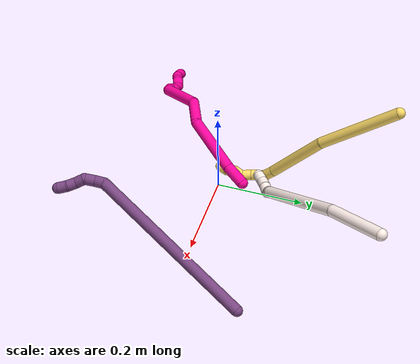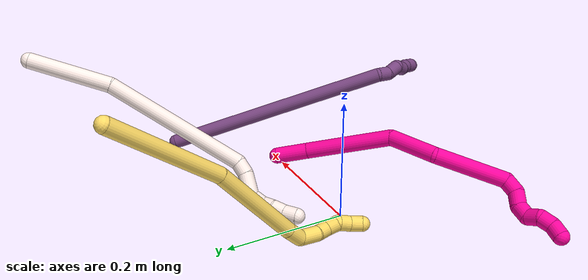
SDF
<sdf version="1.7">
 <world name="default">
  <model name="5">
   <static>0</static>
   <link name="5">
    <collision name="collision-cylinder-e_1_1_4">
     <pose>-0.004229 -0.018593 -0.096051 2.95038 -0.043198 -0.443142</pose>
     <geometry><cylinder><radius>0.0125</radius><length>0.19585</length></cylinder></geometry>
     <surface>
      <friction><ode><mu>1.16</mu><mu2>1.16</mu2><slip1>0</slip1><slip2>0</slip2></ode></friction>
      <contact><ode><kp>1e+06</kp><kd>1</kd><max_vel>0</max_vel><min_depth>0.001</min_depth></ode></contact>
     </surface>
    </collision>
    <visual name="visual-cylinder-e_1_1_4">
     <pose>-0.004229 -0.018593 -0.096051 2.95038 -0.043198 -0.443142</pose>
     <geometry><cylinder><radius>0.0125</radius><length>0.19585</length></cylinder></geometry>
     <material><ambient>1 0.858824 0.4 1</ambient></material>
    </visual>
    <collision name="collision-cylinder-e_2_4_5">
     <pose>-0.023841 -0.039337 -0.270599 3.1142 -0.193443 -2.8611</pose>
     <geometry><cylinder><radius>0.0125</radius><length>0.160038</length></cylinder></geometry>
     <surface>
      <friction><ode><mu>1.16</mu><mu2>1.16</mu2><slip1>0</slip1><slip2>0</slip2></ode></friction>
      <contact><ode><kp>1e+06</kp><kd>1</kd><max_vel>0</max_vel><min_depth>0.001</min_depth></ode></contact>
     </surface>
    </collision>
    <visual name="visual-cylinder-e_2_4_5">
     <pose>-0.023841 -0.039337 -0.270599 3.1142 -0.193443 -2.8611</pose>
     <geometry><cylinder><radius>0.0125</radius><length>0.160038</length></cylinder></geometry>
     <material><ambient>1 0.858824 0.4 1</ambient></material>
    </visual>
    <collision name="collision-cylinder-e_3_5_6">
     <pose>-0.041138 -0.042651 -0.363485 3.06088 -0.131821 -2.04355</pose>
     <geometry><cylinder><radius>0.0125</radius><length>0.029126</length></cylinder></geometry>
     <surface>
      <friction><ode><mu>1.16</mu><mu2>1.16</mu2><slip1>0</slip1><slip2>0</slip2></ode></friction>
      <contact><ode><kp>1e+06</kp><kd>1</kd><max_vel>0</max_vel><min_depth>0.001</min_depth></ode></contact>
     </surface>
    </collision>
    <visual name="visual-cylinder-e_3_5_6">
     <pose>-0.041138 -0.042651 -0.363485 3.06088 -0.131821 -2.04355</pose>
     <geometry><cylinder><radius>0.0125</radius><length>0.029126</length></cylinder></geometry>
     <material><ambient>1 0.858824 0.4 1</ambient></material>
    </visual>
    <collision name="collision-cylinder-e_4_6_7">
     <pose>-0.039413 -0.053308 -0.390351 2.4912 0.228067 0.65491</pose>
     <geometry><cylinder><radius>0.0125</radius><length>0.032187</length></cylinder></geometry>
     <surface>
      <friction><ode><mu>1.16</mu><mu2>1.16</mu2><slip1>0</slip1><slip2>0</slip2></ode></friction>
      <contact><ode><kp>1e+06</kp><kd>1</kd><max_vel>0</max_vel><min_depth>0.001</min_depth></ode></contact>
     </surface>
    </collision>
    <visual name="visual-cylinder-e_4_6_7">
     <pose>-0.039413 -0.053308 -0.390351 2.4912 0.228067 0.65491</pose>
     <geometry><cylinder><radius>0.0125</radius><length>0.032187</length></cylinder></geometry>
     <material><ambient>1 0.858824 0.4 1</ambient></material>
    </visual>
    <collision name="collision-cylinder-e_5_7_8">
     <pose>-0.030714 -0.068334 -0.411246 2.56007 0.465432 1.33973</pose>
     <geometry><cylinder><radius>0.0125</radius><length>0.022548</length></cylinder></geometry>
     <surface>
      <friction><ode><mu>1.16</mu><mu2>1.16</mu2><slip1>0</slip1><slip2>0</slip2></ode></friction>
      <contact><ode><kp>1e+06</kp><kd>1</kd><max_vel>0</max_vel><min_depth>0.001</min_depth></ode></contact>
     </surface>
    </collision>
    <visual name="visual-cylinder-e_5_7_8">
     <pose>-0.030714 -0.068334 -0.411246 2.56007 0.465432 1.33973</pose>
     <geometry><cylinder><radius>0.0125</radius><length>0.022548</length></cylinder></geometry>
     <material><ambient>1 0.858824 0.4 1</ambient></material>
    </visual>
    <collision name="collision-cylinder-e_6_8_9">
     <pose>-0.024362 -0.083262 -0.423206 1.93126 0.12807 0.184865</pose>
     <geometry><cylinder><radius>0.0125</radius><length>0.020243</length></cylinder></geometry>
     <surface>
      <friction><ode><mu>1.16</mu><mu2>1.16</mu2><slip1>0</slip1><slip2>0</slip2></ode></friction>
      <contact><ode><kp>1e+06</kp><kd>1</kd><max_vel>0</max_vel><min_depth>0.001</min_depth></ode></contact>
     </surface>
    </collision>
    <visual name="visual-cylinder-e_6_8_9">
     <pose>-0.024362 -0.083262 -0.423206 1.93126 0.12807 0.184865</pose>
     <geometry><cylinder><radius>0.0125</radius><length>0.020243</length></cylinder></geometry>
     <material><ambient>1 0.858824 0.4 1</ambient></material>
    </visual>
    <collision name="collision-cylinder-e_7_9_10">
     <pose>-0.023694 -0.098228 -0.435027 2.5492 -0.062524 -0.204233</pose>
     <geometry><cylinder><radius>0.0125</radius><length>0.020001</length></cylinder></geometry>
     <surface>
      <friction><ode><mu>1.16</mu><mu2>1.16</mu2><slip1>0</slip1><slip2>0</slip2></ode></friction>
      <contact><ode><kp>1e+06</kp><kd>1</kd><max_vel>0</max_vel><min_depth>0.001</min_depth></ode></contact>
     </surface>
    </collision>
    <visual name="visual-cylinder-e_7_9_10">
     <pose>-0.023694 -0.098228 -0.435027 2.5492 -0.062524 -0.204233</pose>
     <geometry><cylinder><radius>0.0125</radius><length>0.020001</length></cylinder></geometry>
     <material><ambient>1 0.858824 0.4 1</ambient></material>
    </visual>
    <collision name="collision-cylinder-e_8_10_2">
     <pose>-0.026797 -0.111596 -0.449066 2.20709 -0.250329 -0.488813</pose>
     <geometry><cylinder><radius>0.0125</radius><length>0.020006</length></cylinder></geometry>
     <surface>
      <friction><ode><mu>1.16</mu><mu2>1.16</mu2><slip1>0</slip1><slip2>0</slip2></ode></friction>
      <contact><ode><kp>1e+06</kp><kd>1</kd><max_vel>0</max_vel><min_depth>0.001</min_depth></ode></contact>
     </surface>
    </collision>
    <visual name="visual-cylinder-e_8_10_2">
     <pose>-0.026797 -0.111596 -0.449066 2.20709 -0.250329 -0.488813</pose>
     <geometry><cylinder><radius>0.0125</radius><length>0.020006</length></cylinder></geometry>
     <material><ambient>1 0.858824 0.4 1</ambient></material>
    </visual>
    <collision name="collision-sphere-2">
     <pose>-0.029275 -0.119391 -0.454824 0 -0 0</pose>
     <geometry><sphere><radius>0.0125</radius></sphere></geometry>
     <surface>
      <friction><ode><mu>1.16</mu><mu2>1.16</mu2><slip1>0</slip1><slip2>0</slip2></ode></friction>
      <contact><ode><kp>1e+06</kp><kd>1</kd><max_vel>0</max_vel><min_depth>0.001</min_depth></ode></contact>
     </surface>
    </collision>
    <visual name="visual-sphere-2">
     <pose>-0.029275 -0.119391 -0.454824 0 -0 0</pose>
     <geometry><sphere><radius>0.0125</radius></sphere></geometry>
     <material><ambient>1 0.858824 0.4 1</ambient></material>
    </visual>
    <collision name="collision-sphere-10">
     <pose>-0.024319 -0.103801 -0.443307 0 -0 0</pose>
     <geometry><sphere><radius>0.0125</radius></sphere></geometry>
     <surface>
      <friction><ode><mu>1.16</mu><mu2>1.16</mu2><slip1>0</slip1><slip2>0</slip2></ode></friction>
      <contact><ode><kp>1e+06</kp><kd>1</kd><max_vel>0</max_vel><min_depth>0.001</min_depth></ode></contact>
     </surface>
    </collision>
    <visual name="visual-sphere-10">
     <pose>-0.024319 -0.103801 -0.443307 0 -0 0</pose>
     <geometry><sphere><radius>0.0125</radius></sphere></geometry>
     <material><ambient>1 0.858824 0.4 1</ambient></material>
    </visual>
    <collision name="collision-sphere-9">
     <pose>-0.023069 -0.092656 -0.426747 0 -0 0</pose>
     <geometry><sphere><radius>0.0125</radius></sphere></geometry>
     <surface>
      <friction><ode><mu>1.16</mu><mu2>1.16</mu2><slip1>0</slip1><slip2>0</slip2></ode></friction>
      <contact><ode><kp>1e+06</kp><kd>1</kd><max_vel>0</max_vel><min_depth>0.001</min_depth></ode></contact>
     </surface>
    </collision>
    <visual name="visual-sphere-9">
     <pose>-0.023069 -0.092656 -0.426747 0 -0 0</pose>
     <geometry><sphere><radius>0.0125</radius></sphere></geometry>
     <material><ambient>1 0.858824 0.4 1</ambient></material>
    </visual>
    <collision name="collision-sphere-4">
     <pose>-0.008458 -0.037186 -0.192102 0 -0 0</pose>
     <geometry><sphere><radius>0.0125</radius></sphere></geometry>
     <surface>
      <friction><ode><mu>1.16</mu><mu2>1.16</mu2><slip1>0</slip1><slip2>0</slip2></ode></friction>
      <contact><ode><kp>1e+06</kp><kd>1</kd><max_vel>0</max_vel><min_depth>0.001</min_depth></ode></contact>
     </surface>
    </collision>
    <visual name="visual-sphere-4">
     <pose>-0.008458 -0.037186 -0.192102 0 -0 0</pose>
     <geometry><sphere><radius>0.0125</radius></sphere></geometry>
     <material><ambient>1 0.858824 0.4 1</ambient></material>
    </visual>
    <collision name="collision-sphere-1">
     <geometry><sphere><radius>0.0125</radius></sphere></geometry>
     <surface>
      <friction><ode><mu>1.16</mu><mu2>1.16</mu2><slip1>0</slip1><slip2>0</slip2></ode></friction>
      <contact><ode><kp>1e+06</kp><kd>1</kd><max_vel>0</max_vel><min_depth>0.001</min_depth></ode></contact>
     </surface>
    </collision>
    <visual name="visual-sphere-1">
     <geometry><sphere><radius>0.0125</radius></sphere></geometry>
     <material><ambient>1 0.858824 0.4 1</ambient></material>
    </visual>
    <collision name="collision-sphere-8">
     <pose>-0.025654 -0.073868 -0.419665 0 -0 0</pose>
     <geometry><sphere><radius>0.0125</radius></sphere></geometry>
     <surface>
      <friction><ode><mu>1.16</mu><mu2>1.16</mu2><slip1>0</slip1><slip2>0</slip2></ode></friction>
      <contact><ode><kp>1e+06</kp><kd>1</kd><max_vel>0</max_vel><min_depth>0.001</min_depth></ode></contact>
     </surface>
    </collision>
    <visual name="visual-sphere-8">
     <pose>-0.025654 -0.073868 -0.419665 0 -0 0</pose>
     <geometry><sphere><radius>0.0125</radius></sphere></geometry>
     <material><ambient>1 0.858824 0.4 1</ambient></material>
    </visual>
    <collision name="collision-sphere-5">
     <pose>-0.039223 -0.041487 -0.349096 0 -0 0</pose>
     <geometry><sphere><radius>0.0125</radius></sphere></geometry>
     <surface>
      <friction><ode><mu>1.16</mu><mu2>1.16</mu2><slip1>0</slip1><slip2>0</slip2></ode></friction>
      <contact><ode><kp>1e+06</kp><kd>1</kd><max_vel>0</max_vel><min_depth>0.001</min_depth></ode></contact>
     </surface>
    </collision>
    <visual name="visual-sphere-5">
     <pose>-0.039223 -0.041487 -0.349096 0 -0 0</pose>
     <geometry><sphere><radius>0.0125</radius></sphere></geometry>
     <material><ambient>1 0.858824 0.4 1</ambient></material>
    </visual>
    <collision name="collision-sphere-6">
     <pose>-0.043052 -0.043815 -0.377875 0 -0 0</pose>
     <geometry><sphere><radius>0.0125</radius></sphere></geometry>
     <surface>
      <friction><ode><mu>1.16</mu><mu2>1.16</mu2><slip1>0</slip1><slip2>0</slip2></ode></friction>
      <contact><ode><kp>1e+06</kp><kd>1</kd><max_vel>0</max_vel><min_depth>0.001</min_depth></ode></contact>
     </surface>
    </collision>
    <visual name="visual-sphere-6">
     <pose>-0.043052 -0.043815 -0.377875 0 -0 0</pose>
     <geometry><sphere><radius>0.0125</radius></sphere></geometry>
     <material><ambient>1 0.858824 0.4 1</ambient></material>
    </visual>
    <collision name="collision-sphere-7">
     <pose>-0.035774 -0.0628 -0.402828 0 -0 0</pose>
     <geometry><sphere><radius>0.0125</radius></sphere></geometry>
     <surface>
      <friction><ode><mu>1.16</mu><mu2>1.16</mu2><slip1>0</slip1><slip2>0</slip2></ode></friction>
      <contact><ode><kp>1e+06</kp><kd>1</kd><max_vel>0</max_vel><min_depth>0.001</min_depth></ode></contact>
     </surface>
    </collision>
    <visual name="visual-sphere-7">
     <pose>-0.035774 -0.0628 -0.402828 0 -0 0</pose>
     <geometry><sphere><radius>0.0125</radius></sphere></geometry>
     <material><ambient>1 0.858824 0.4 1</ambient></material>
    </visual>
    <inertial>
     <pose>-0.018612 -0.040637 -0.241588 0 -0 0</pose>
     <mass>0.5</mass>
     <inertia>
      <ixx>-0.000118</ixx>
      <ixy>0</ixy>
      <ixz>0</ixz>
      <iyy>-0.000603</iyy>
      <iyz>0</iyz>
      <izz>0.000194</izz>
     </inertia>
    </inertial>
   </link>
   <pose>-0.050195 0.379906 0.277432 -0.689347 -0.388061 -0.199956</pose>
  </model>
  <model name="11">
   <static>0</static>
   <link name="11">
    <collision name="collision-cylinder-e_1_1_4">
     <pose>0.020345 -0.00553 -0.061253 3.05155 0.319471 2.59627</pose>
     <geometry><cylinder><radius>0.0125</radius><length>0.129559</length></cylinder></geometry>
     <surface>
      <friction><ode><mu>1.16</mu><mu2>1.16</mu2><slip1>0</slip1><slip2>0</slip2></ode></friction>
      <contact><ode><kp>1e+06</kp><kd>1</kd><max_vel>0</max_vel><min_depth>0.001</min_depth></ode></contact>
     </surface>
    </collision>
    <visual name="visual-cylinder-e_1_1_4">
     <pose>0.020345 -0.00553 -0.061253 3.05155 0.319471 2.59627</pose>
     <geometry><cylinder><radius>0.0125</radius><length>0.129559</length></cylinder></geometry>
     <material><ambient>1 0.933333 0.909804 1</ambient></material>
    </visual>
    <collision name="collision-cylinder-e_2_4_5">
     <pose>0.058112 0.001906 -0.235323 -3.02716 0.152231 -1.85322</pose>
     <geometry><cylinder><radius>0.0125</radius><length>0.229778</length></cylinder></geometry>
     <surface>
      <friction><ode><mu>1.16</mu><mu2>1.16</mu2><slip1>0</slip1><slip2>0</slip2></ode></friction>
      <contact><ode><kp>1e+06</kp><kd>1</kd><max_vel>0</max_vel><min_depth>0.001</min_depth></ode></contact>
     </surface>
    </collision>
    <visual name="visual-cylinder-e_2_4_5">
     <pose>0.058112 0.001906 -0.235323 -3.02716 0.152231 -1.85322</pose>
     <geometry><cylinder><radius>0.0125</radius><length>0.229778</length></cylinder></geometry>
     <material><ambient>1 0.933333 0.909804 1</ambient></material>
    </visual>
    <collision name="collision-cylinder-e_3_5_6">
     <pose>0.072129 0.017276 -0.357948 -2.90131 -0.325262 1.87295</pose>
     <geometry><cylinder><radius>0.0125</radius><length>0.021313</length></cylinder></geometry>
     <surface>
      <friction><ode><mu>1.16</mu><mu2>1.16</mu2><slip1>0</slip1><slip2>0</slip2></ode></friction>
      <contact><ode><kp>1e+06</kp><kd>1</kd><max_vel>0</max_vel><min_depth>0.001</min_depth></ode></contact>
     </surface>
    </collision>
    <visual name="visual-cylinder-e_3_5_6">
     <pose>0.072129 0.017276 -0.357948 -2.90131 -0.325262 1.87295</pose>
     <geometry><cylinder><radius>0.0125</radius><length>0.021313</length></cylinder></geometry>
     <material><ambient>1 0.933333 0.909804 1</ambient></material>
    </visual>
    <collision name="collision-cylinder-e_4_6_7">
     <pose>0.058231 0.025316 -0.381392 -2.74963 -0.618113 2.02901</pose>
     <geometry><cylinder><radius>0.0125</radius><length>0.036211</length></cylinder></geometry>
     <surface>
      <friction><ode><mu>1.16</mu><mu2>1.16</mu2><slip1>0</slip1><slip2>0</slip2></ode></friction>
      <contact><ode><kp>1e+06</kp><kd>1</kd><max_vel>0</max_vel><min_depth>0.001</min_depth></ode></contact>
     </surface>
    </collision>
    <visual name="visual-cylinder-e_4_6_7">
     <pose>0.058231 0.025316 -0.381392 -2.74963 -0.618113 2.02901</pose>
     <geometry><cylinder><radius>0.0125</radius><length>0.036211</length></cylinder></geometry>
     <material><ambient>1 0.933333 0.909804 1</ambient></material>
    </visual>
    <collision name="collision-cylinder-e_5_7_8">
     <pose>0.049206 0.033603 -0.405597 -2.89586 0.133846 -0.994519</pose>
     <geometry><cylinder><radius>0.0125</radius><length>0.021988</length></cylinder></geometry>
     <surface>
      <friction><ode><mu>1.16</mu><mu2>1.16</mu2><slip1>0</slip1><slip2>0</slip2></ode></friction>
      <contact><ode><kp>1e+06</kp><kd>1</kd><max_vel>0</max_vel><min_depth>0.001</min_depth></ode></contact>
     </surface>
    </collision>
    <visual name="visual-cylinder-e_5_7_8">
     <pose>0.049206 0.033603 -0.405597 -2.89586 0.133846 -0.994519</pose>
     <geometry><cylinder><radius>0.0125</radius><length>0.021988</length></cylinder></geometry>
     <material><ambient>1 0.933333 0.909804 1</ambient></material>
    </visual>
    <collision name="collision-cylinder-e_6_8_9">
     <pose>0.050007 0.031433 -0.42493 2.63874 -0.066493 -0.25753</pose>
     <geometry><cylinder><radius>0.0125</radius><length>0.020049</length></cylinder></geometry>
     <surface>
      <friction><ode><mu>1.16</mu><mu2>1.16</mu2><slip1>0</slip1><slip2>0</slip2></ode></friction>
      <contact><ode><kp>1e+06</kp><kd>1</kd><max_vel>0</max_vel><min_depth>0.001</min_depth></ode></contact>
     </surface>
    </collision>
    <visual name="visual-cylinder-e_6_8_9">
     <pose>0.050007 0.031433 -0.42493 2.63874 -0.066493 -0.25753</pose>
     <geometry><cylinder><radius>0.0125</radius><length>0.020049</length></cylinder></geometry>
     <material><ambient>1 0.933333 0.909804 1</ambient></material>
    </visual>
    <collision name="collision-cylinder-e_7_9_10">
     <pose>0.048972 0.023344 -0.443273 2.81274 -0.036454 -0.218845</pose>
     <geometry><cylinder><radius>0.0125</radius><length>0.020254</length></cylinder></geometry>
     <surface>
      <friction><ode><mu>1.16</mu><mu2>1.16</mu2><slip1>0</slip1><slip2>0</slip2></ode></friction>
      <contact><ode><kp>1e+06</kp><kd>1</kd><max_vel>0</max_vel><min_depth>0.001</min_depth></ode></contact>
     </surface>
    </collision>
    <visual name="visual-cylinder-e_7_9_10">
     <pose>0.048972 0.023344 -0.443273 2.81274 -0.036454 -0.218845</pose>
     <geometry><cylinder><radius>0.0125</radius><length>0.020254</length></cylinder></geometry>
     <material><ambient>1 0.933333 0.909804 1</ambient></material>
    </visual>
    <collision name="collision-cylinder-e_8_10_2">
     <pose>0.049357 0.01568 -0.462272 2.705 0.072417 0.323732</pose>
     <geometry><cylinder><radius>0.0125</radius><length>0.020847</length></cylinder></geometry>
     <surface>
      <friction><ode><mu>1.16</mu><mu2>1.16</mu2><slip1>0</slip1><slip2>0</slip2></ode></friction>
      <contact><ode><kp>1e+06</kp><kd>1</kd><max_vel>0</max_vel><min_depth>0.001</min_depth></ode></contact>
     </surface>
    </collision>
    <visual name="visual-cylinder-e_8_10_2">
     <pose>0.049357 0.01568 -0.462272 2.705 0.072417 0.323732</pose>
     <geometry><cylinder><radius>0.0125</radius><length>0.020847</length></cylinder></geometry>
     <material><ambient>1 0.933333 0.909804 1</ambient></material>
    </visual>
    <collision name="collision-sphere-2">
     <pose>0.050111 0.011283 -0.471693 0 -0 0</pose>
     <geometry><sphere><radius>0.0125</radius></sphere></geometry>
     <surface>
      <friction><ode><mu>1.16</mu><mu2>1.16</mu2><slip1>0</slip1><slip2>0</slip2></ode></friction>
      <contact><ode><kp>1e+06</kp><kd>1</kd><max_vel>0</max_vel><min_depth>0.001</min_depth></ode></contact>
     </surface>
    </collision>
    <visual name="visual-sphere-2">
     <pose>0.050111 0.011283 -0.471693 0 -0 0</pose>
     <geometry><sphere><radius>0.0125</radius></sphere></geometry>
     <material><ambient>1 0.933333 0.909804 1</ambient></material>
    </visual>
    <collision name="collision-sphere-10">
     <pose>0.048603 0.020076 -0.452851 0 -0 0</pose>
     <geometry><sphere><radius>0.0125</radius></sphere></geometry>
     <surface>
      <friction><ode><mu>1.16</mu><mu2>1.16</mu2><slip1>0</slip1><slip2>0</slip2></ode></friction>
      <contact><ode><kp>1e+06</kp><kd>1</kd><max_vel>0</max_vel><min_depth>0.001</min_depth></ode></contact>
     </surface>
    </collision>
    <visual name="visual-sphere-10">
     <pose>0.048603 0.020076 -0.452851 0 -0 0</pose>
     <geometry><sphere><radius>0.0125</radius></sphere></geometry>
     <material><ambient>1 0.933333 0.909804 1</ambient></material>
    </visual>
    <collision name="collision-sphere-9">
     <pose>0.049341 0.026613 -0.433694 0 -0 0</pose>
     <geometry><sphere><radius>0.0125</radius></sphere></geometry>
     <surface>
      <friction><ode><mu>1.16</mu><mu2>1.16</mu2><slip1>0</slip1><slip2>0</slip2></ode></friction>
      <contact><ode><kp>1e+06</kp><kd>1</kd><max_vel>0</max_vel><min_depth>0.001</min_depth></ode></contact>
     </surface>
    </collision>
    <visual name="visual-sphere-9">
     <pose>0.049341 0.026613 -0.433694 0 -0 0</pose>
     <geometry><sphere><radius>0.0125</radius></sphere></geometry>
     <material><ambient>1 0.933333 0.909804 1</ambient></material>
    </visual>
    <collision name="collision-sphere-4">
     <pose>0.04069 -0.01106 -0.122505 0 -0 0</pose>
     <geometry><sphere><radius>0.0125</radius></sphere></geometry>
     <surface>
      <friction><ode><mu>1.16</mu><mu2>1.16</mu2><slip1>0</slip1><slip2>0</slip2></ode></friction>
      <contact><ode><kp>1e+06</kp><kd>1</kd><max_vel>0</max_vel><min_depth>0.001</min_depth></ode></contact>
     </surface>
    </collision>
    <visual name="visual-sphere-4">
     <pose>0.04069 -0.01106 -0.122505 0 -0 0</pose>
     <geometry><sphere><radius>0.0125</radius></sphere></geometry>
     <material><ambient>1 0.933333 0.909804 1</ambient></material>
    </visual>
    <collision name="collision-sphere-1">
     <geometry><sphere><radius>0.0125</radius></sphere></geometry>
     <surface>
      <friction><ode><mu>1.16</mu><mu2>1.16</mu2><slip1>0</slip1><slip2>0</slip2></ode></friction>
      <contact><ode><kp>1e+06</kp><kd>1</kd><max_vel>0</max_vel><min_depth>0.001</min_depth></ode></contact>
     </surface>
    </collision>
    <visual name="visual-sphere-1">
     <geometry><sphere><radius>0.0125</radius></sphere></geometry>
     <material><ambient>1 0.933333 0.909804 1</ambient></material>
    </visual>
    <collision name="collision-sphere-8">
     <pose>0.050673 0.036254 -0.416166 0 -0 0</pose>
     <geometry><sphere><radius>0.0125</radius></sphere></geometry>
     <surface>
      <friction><ode><mu>1.16</mu><mu2>1.16</mu2><slip1>0</slip1><slip2>0</slip2></ode></friction>
      <contact><ode><kp>1e+06</kp><kd>1</kd><max_vel>0</max_vel><min_depth>0.001</min_depth></ode></contact>
     </surface>
    </collision>
    <visual name="visual-sphere-8">
     <pose>0.050673 0.036254 -0.416166 0 -0 0</pose>
     <geometry><sphere><radius>0.0125</radius></sphere></geometry>
     <material><ambient>1 0.933333 0.909804 1</ambient></material>
    </visual>
    <collision name="collision-sphere-5">
     <pose>0.075534 0.014873 -0.34814 0 -0 0</pose>
     <geometry><sphere><radius>0.0125</radius></sphere></geometry>
     <surface>
      <friction><ode><mu>1.16</mu><mu2>1.16</mu2><slip1>0</slip1><slip2>0</slip2></ode></friction>
      <contact><ode><kp>1e+06</kp><kd>1</kd><max_vel>0</max_vel><min_depth>0.001</min_depth></ode></contact>
     </surface>
    </collision>
    <visual name="visual-sphere-5">
     <pose>0.075534 0.014873 -0.34814 0 -0 0</pose>
     <geometry><sphere><radius>0.0125</radius></sphere></geometry>
     <material><ambient>1 0.933333 0.909804 1</ambient></material>
    </visual>
    <collision name="collision-sphere-6">
     <pose>0.068723 0.019679 -0.367756 0 -0 0</pose>
     <geometry><sphere><radius>0.0125</radius></sphere></geometry>
     <surface>
      <friction><ode><mu>1.16</mu><mu2>1.16</mu2><slip1>0</slip1><slip2>0</slip2></ode></friction>
      <contact><ode><kp>1e+06</kp><kd>1</kd><max_vel>0</max_vel><min_depth>0.001</min_depth></ode></contact>
     </surface>
    </collision>
    <visual name="visual-sphere-6">
     <pose>0.068723 0.019679 -0.367756 0 -0 0</pose>
     <geometry><sphere><radius>0.0125</radius></sphere></geometry>
     <material><ambient>1 0.933333 0.909804 1</ambient></material>
    </visual>
    <collision name="collision-sphere-7">
     <pose>0.047739 0.030952 -0.395029 0 -0 0</pose>
     <geometry><sphere><radius>0.0125</radius></sphere></geometry>
     <surface>
      <friction><ode><mu>1.16</mu><mu2>1.16</mu2><slip1>0</slip1><slip2>0</slip2></ode></friction>
      <contact><ode><kp>1e+06</kp><kd>1</kd><max_vel>0</max_vel><min_depth>0.001</min_depth></ode></contact>
     </surface>
    </collision>
    <visual name="visual-sphere-7">
     <pose>0.047739 0.030952 -0.395029 0 -0 0</pose>
     <geometry><sphere><radius>0.0125</radius></sphere></geometry>
     <material><ambient>1 0.933333 0.909804 1</ambient></material>
    </visual>
    <inertial>
     <pose>0.04748 0.006351 -0.239001 0 -0 0</pose>
     <mass>0.5</mass>
     <inertia>
      <ixx>-0.001298</ixx>
      <ixy>0</ixy>
      <ixz>0</ixz>
      <iyy>-0.000412</iyy>
      <iyz>0</iyz>
      <izz>-0.000346</izz>
     </inertia>
    </inertial>
   </link>
   <pose>0.268249 0.402576 0.250632 -1.09154 -0.221321 -0.982923</pose>
  </model>
  <model name="18">
   <static>0</static>
   <link name="18">
    <collision name="collision-cylinder-e_1_1_4">
     <pose>-0.019984 -0.010803 0.01003 0.82249 -0.935222 -0.433522</pose>
     <geometry><cylinder><radius>0.0125</radius><length>0.049665</length></cylinder></geometry>
     <surface>
      <friction><ode><mu>1.16</mu><mu2>1.16</mu2><slip1>0</slip1><slip2>0</slip2></ode></friction>
      <contact><ode><kp>1e+06</kp><kd>1</kd><max_vel>0</max_vel><min_depth>0.001</min_depth></ode></contact>
     </surface>
    </collision>
    <visual name="visual-cylinder-e_1_1_4">
     <pose>-0.019984 -0.010803 0.01003 0.82249 -0.935222 -0.433522</pose>
     <geometry><cylinder><radius>0.0125</radius><length>0.049665</length></cylinder></geometry>
     <material><ambient>1 0.007843 0.615686 1</ambient></material>
    </visual>
    <collision name="collision-cylinder-e_2_4_5">
     <pose>-0.09792 -0.046756 0.04333 0.824208 -1.03685 -0.48878</pose>
     <geometry><cylinder><radius>0.0125</radius><length>0.134648</length></cylinder></geometry>
     <surface>
      <friction><ode><mu>1.16</mu><mu2>1.16</mu2><slip1>0</slip1><slip2>0</slip2></ode></friction>
      <contact><ode><kp>1e+06</kp><kd>1</kd><max_vel>0</max_vel><min_depth>0.001</min_depth></ode></contact>
     </surface>
    </collision>
    <visual name="visual-cylinder-e_2_4_5">
     <pose>-0.09792 -0.046756 0.04333 0.824208 -1.03685 -0.48878</pose>
     <geometry><cylinder><radius>0.0125</radius><length>0.134648</length></cylinder></geometry>
     <material><ambient>1 0.007843 0.615686 1</ambient></material>
    </visual>
    <collision name="collision-cylinder-e_3_5_6">
     <pose>-0.189251 -0.088472 0.058205 2.0398 -1.06304 -1.52692</pose>
     <geometry><cylinder><radius>0.0125</radius><length>0.076394</length></cylinder></geometry>
     <surface>
      <friction><ode><mu>1.16</mu><mu2>1.16</mu2><slip1>0</slip1><slip2>0</slip2></ode></friction>
      <contact><ode><kp>1e+06</kp><kd>1</kd><max_vel>0</max_vel><min_depth>0.001</min_depth></ode></contact>
     </surface>
    </collision>
    <visual name="visual-cylinder-e_3_5_6">
     <pose>-0.189251 -0.088472 0.058205 2.0398 -1.06304 -1.52692</pose>
     <geometry><cylinder><radius>0.0125</radius><length>0.076394</length></cylinder></geometry>
     <material><ambient>1 0.007843 0.615686 1</ambient></material>
    </visual>
    <collision name="collision-cylinder-e_4_6_7">
     <pose>-0.255509 -0.150219 0.054511 1.46712 -0.62656 -0.568186</pose>
     <geometry><cylinder><radius>0.0125</radius><length>0.11215</length></cylinder></geometry>
     <surface>
      <friction><ode><mu>1.16</mu><mu2>1.16</mu2><slip1>0</slip1><slip2>0</slip2></ode></friction>
      <contact><ode><kp>1e+06</kp><kd>1</kd><max_vel>0</max_vel><min_depth>0.001</min_depth></ode></contact>
     </surface>
    </collision>
    <visual name="visual-cylinder-e_4_6_7">
     <pose>-0.255509 -0.150219 0.054511 1.46712 -0.62656 -0.568186</pose>
     <geometry><cylinder><radius>0.0125</radius><length>0.11215</length></cylinder></geometry>
     <material><ambient>1 0.007843 0.615686 1</ambient></material>
    </visual>
    <collision name="collision-cylinder-e_5_7_8">
     <pose>-0.294761 -0.202326 0.052779 2.31914 -0.593078 -1.22233</pose>
     <geometry><cylinder><radius>0.0125</radius><length>0.022802</length></cylinder></geometry>
     <surface>
      <friction><ode><mu>1.16</mu><mu2>1.16</mu2><slip1>0</slip1><slip2>0</slip2></ode></friction>
      <contact><ode><kp>1e+06</kp><kd>1</kd><max_vel>0</max_vel><min_depth>0.001</min_depth></ode></contact>
     </surface>
    </collision>
    <visual name="visual-cylinder-e_5_7_8">
     <pose>-0.294761 -0.202326 0.052779 2.31914 -0.593078 -1.22233</pose>
     <geometry><cylinder><radius>0.0125</radius><length>0.022802</length></cylinder></geometry>
     <material><ambient>1 0.007843 0.615686 1</ambient></material>
    </visual>
    <collision name="collision-cylinder-e_6_8_9">
     <pose>-0.304386 -0.212621 0.0358 2.83257 -0.285793 -1.49158</pose>
     <geometry><cylinder><radius>0.0125</radius><length>0.023075</length></cylinder></geometry>
     <surface>
      <friction><ode><mu>1.16</mu><mu2>1.16</mu2><slip1>0</slip1><slip2>0</slip2></ode></friction>
      <contact><ode><kp>1e+06</kp><kd>1</kd><max_vel>0</max_vel><min_depth>0.001</min_depth></ode></contact>
     </surface>
    </collision>
    <visual name="visual-cylinder-e_6_8_9">
     <pose>-0.304386 -0.212621 0.0358 2.83257 -0.285793 -1.49158</pose>
     <geometry><cylinder><radius>0.0125</radius><length>0.023075</length></cylinder></geometry>
     <material><ambient>1 0.007843 0.615686 1</ambient></material>
    </visual>
    <collision name="collision-cylinder-e_7_9_10">
     <pose>-0.314416 -0.219821 0.018757 2.60864 -0.731823 -1.90359</pose>
     <geometry><cylinder><radius>0.0125</radius><length>0.020282</length></cylinder></geometry>
     <surface>
      <friction><ode><mu>1.16</mu><mu2>1.16</mu2><slip1>0</slip1><slip2>0</slip2></ode></friction>
      <contact><ode><kp>1e+06</kp><kd>1</kd><max_vel>0</max_vel><min_depth>0.001</min_depth></ode></contact>
     </surface>
    </collision>
    <visual name="visual-cylinder-e_7_9_10">
     <pose>-0.314416 -0.219821 0.018757 2.60864 -0.731823 -1.90359</pose>
     <geometry><cylinder><radius>0.0125</radius><length>0.020282</length></cylinder></geometry>
     <material><ambient>1 0.007843 0.615686 1</ambient></material>
    </visual>
    <collision name="collision-cylinder-e_8_10_11">
     <pose>-0.331335 -0.224642 0.011753 2.04389 -1.46186 -1.94443</pose>
     <geometry><cylinder><radius>0.0125</radius><length>0.020407</length></cylinder></geometry>
     <surface>
      <friction><ode><mu>1.16</mu><mu2>1.16</mu2><slip1>0</slip1><slip2>0</slip2></ode></friction>
      <contact><ode><kp>1e+06</kp><kd>1</kd><max_vel>0</max_vel><min_depth>0.001</min_depth></ode></contact>
     </surface>
    </collision>
    <visual name="visual-cylinder-e_8_10_11">
     <pose>-0.331335 -0.224642 0.011753 2.04389 -1.46186 -1.94443</pose>
     <geometry><cylinder><radius>0.0125</radius><length>0.020407</length></cylinder></geometry>
     <material><ambient>1 0.007843 0.615686 1</ambient></material>
    </visual>
    <collision name="collision-cylinder-e_9_11_12">
     <pose>-0.349229 -0.231241 0.00768 2.137 -0.861691 -1.39356</pose>
     <geometry><cylinder><radius>0.0125</radius><length>0.020425</length></cylinder></geometry>
     <surface>
      <friction><ode><mu>1.16</mu><mu2>1.16</mu2><slip1>0</slip1><slip2>0</slip2></ode></friction>
      <contact><ode><kp>1e+06</kp><kd>1</kd><max_vel>0</max_vel><min_depth>0.001</min_depth></ode></contact>
     </surface>
    </collision>
    <visual name="visual-cylinder-e_9_11_12">
     <pose>-0.349229 -0.231241 0.00768 2.137 -0.861691 -1.39356</pose>
     <geometry><cylinder><radius>0.0125</radius><length>0.020425</length></cylinder></geometry>
     <material><ambient>1 0.007843 0.615686 1</ambient></material>
    </visual>
    <collision name="collision-cylinder-e_10_12_2">
     <pose>-0.363357 -0.240228 -0.00292 2.6942 -0.685309 -2.00616</pose>
     <geometry><cylinder><radius>0.0125</radius><length>0.020151</length></cylinder></geometry>
     <surface>
      <friction><ode><mu>1.16</mu><mu2>1.16</mu2><slip1>0</slip1><slip2>0</slip2></ode></friction>
      <contact><ode><kp>1e+06</kp><kd>1</kd><max_vel>0</max_vel><min_depth>0.001</min_depth></ode></contact>
     </surface>
    </collision>
    <visual name="visual-cylinder-e_10_12_2">
     <pose>-0.363357 -0.240228 -0.00292 2.6942 -0.685309 -2.00616</pose>
     <geometry><cylinder><radius>0.0125</radius><length>0.020151</length></cylinder></geometry>
     <material><ambient>1 0.007843 0.615686 1</ambient></material>
    </visual>
    <collision name="collision-sphere-2">
     <pose>-0.369734 -0.243603 -0.009953 0 -0 0</pose>
     <geometry><sphere><radius>0.0125</radius></sphere></geometry>
     <surface>
      <friction><ode><mu>1.16</mu><mu2>1.16</mu2><slip1>0</slip1><slip2>0</slip2></ode></friction>
      <contact><ode><kp>1e+06</kp><kd>1</kd><max_vel>0</max_vel><min_depth>0.001</min_depth></ode></contact>
     </surface>
    </collision>
    <visual name="visual-sphere-2">
     <pose>-0.369734 -0.243603 -0.009953 0 -0 0</pose>
     <geometry><sphere><radius>0.0125</radius></sphere></geometry>
     <material><ambient>1 0.007843 0.615686 1</ambient></material>
    </visual>
    <collision name="collision-sphere-12">
     <pose>-0.35698 -0.236854 0.004113 0 -0 0</pose>
     <geometry><sphere><radius>0.0125</radius></sphere></geometry>
     <surface>
      <friction><ode><mu>1.16</mu><mu2>1.16</mu2><slip1>0</slip1><slip2>0</slip2></ode></friction>
      <contact><ode><kp>1e+06</kp><kd>1</kd><max_vel>0</max_vel><min_depth>0.001</min_depth></ode></contact>
     </surface>
    </collision>
    <visual name="visual-sphere-12">
     <pose>-0.35698 -0.236854 0.004113 0 -0 0</pose>
     <geometry><sphere><radius>0.0125</radius></sphere></geometry>
     <material><ambient>1 0.007843 0.615686 1</ambient></material>
    </visual>
    <collision name="collision-sphere-11">
     <pose>-0.341478 -0.225629 0.011248 0 -0 0</pose>
     <geometry><sphere><radius>0.0125</radius></sphere></geometry>
     <surface>
      <friction><ode><mu>1.16</mu><mu2>1.16</mu2><slip1>0</slip1><slip2>0</slip2></ode></friction>
      <contact><ode><kp>1e+06</kp><kd>1</kd><max_vel>0</max_vel><min_depth>0.001</min_depth></ode></contact>
     </surface>
    </collision>
    <visual name="visual-sphere-11">
     <pose>-0.341478 -0.225629 0.011248 0 -0 0</pose>
     <geometry><sphere><radius>0.0125</radius></sphere></geometry>
     <material><ambient>1 0.007843 0.615686 1</ambient></material>
    </visual>
    <collision name="collision-sphere-10">
     <pose>-0.321192 -0.223654 0.012259 0 -0 0</pose>
     <geometry><sphere><radius>0.0125</radius></sphere></geometry>
     <surface>
      <friction><ode><mu>1.16</mu><mu2>1.16</mu2><slip1>0</slip1><slip2>0</slip2></ode></friction>
      <contact><ode><kp>1e+06</kp><kd>1</kd><max_vel>0</max_vel><min_depth>0.001</min_depth></ode></contact>
     </surface>
    </collision>
    <visual name="visual-sphere-10">
     <pose>-0.321192 -0.223654 0.012259 0 -0 0</pose>
     <geometry><sphere><radius>0.0125</radius></sphere></geometry>
     <material><ambient>1 0.007843 0.615686 1</ambient></material>
    </visual>
    <collision name="collision-sphere-9">
     <pose>-0.307639 -0.215988 0.025255 0 -0 0</pose>
     <geometry><sphere><radius>0.0125</radius></sphere></geometry>
     <surface>
      <friction><ode><mu>1.16</mu><mu2>1.16</mu2><slip1>0</slip1><slip2>0</slip2></ode></friction>
      <contact><ode><kp>1e+06</kp><kd>1</kd><max_vel>0</max_vel><min_depth>0.001</min_depth></ode></contact>
     </surface>
    </collision>
    <visual name="visual-sphere-9">
     <pose>-0.307639 -0.215988 0.025255 0 -0 0</pose>
     <geometry><sphere><radius>0.0125</radius></sphere></geometry>
     <material><ambient>1 0.007843 0.615686 1</ambient></material>
    </visual>
    <collision name="collision-sphere-4">
     <pose>-0.039967 -0.021607 0.02006 0 -0 0</pose>
     <geometry><sphere><radius>0.0125</radius></sphere></geometry>
     <surface>
      <friction><ode><mu>1.16</mu><mu2>1.16</mu2><slip1>0</slip1><slip2>0</slip2></ode></friction>
      <contact><ode><kp>1e+06</kp><kd>1</kd><max_vel>0</max_vel><min_depth>0.001</min_depth></ode></contact>
     </surface>
    </collision>
    <visual name="visual-sphere-4">
     <pose>-0.039967 -0.021607 0.02006 0 -0 0</pose>
     <geometry><sphere><radius>0.0125</radius></sphere></geometry>
     <material><ambient>1 0.007843 0.615686 1</ambient></material>
    </visual>
    <collision name="collision-sphere-1">
     <geometry><sphere><radius>0.0125</radius></sphere></geometry>
     <surface>
      <friction><ode><mu>1.16</mu><mu2>1.16</mu2><slip1>0</slip1><slip2>0</slip2></ode></friction>
      <contact><ode><kp>1e+06</kp><kd>1</kd><max_vel>0</max_vel><min_depth>0.001</min_depth></ode></contact>
     </surface>
    </collision>
    <visual name="visual-sphere-1">
     <geometry><sphere><radius>0.0125</radius></sphere></geometry>
     <material><ambient>1 0.007843 0.615686 1</ambient></material>
    </visual>
    <collision name="collision-sphere-8">
     <pose>-0.301134 -0.209254 0.046346 0 -0 0</pose>
     <geometry><sphere><radius>0.0125</radius></sphere></geometry>
     <surface>
      <friction><ode><mu>1.16</mu><mu2>1.16</mu2><slip1>0</slip1><slip2>0</slip2></ode></friction>
      <contact><ode><kp>1e+06</kp><kd>1</kd><max_vel>0</max_vel><min_depth>0.001</min_depth></ode></contact>
     </surface>
    </collision>
    <visual name="visual-sphere-8">
     <pose>-0.301134 -0.209254 0.046346 0 -0 0</pose>
     <geometry><sphere><radius>0.0125</radius></sphere></geometry>
     <material><ambient>1 0.007843 0.615686 1</ambient></material>
    </visual>
    <collision name="collision-sphere-5">
     <pose>-0.155873 -0.071906 0.066599 0 -0 0</pose>
     <geometry><sphere><radius>0.0125</radius></sphere></geometry>
     <surface>
      <friction><ode><mu>1.16</mu><mu2>1.16</mu2><slip1>0</slip1><slip2>0</slip2></ode></friction>
      <contact><ode><kp>1e+06</kp><kd>1</kd><max_vel>0</max_vel><min_depth>0.001</min_depth></ode></contact>
     </surface>
    </collision>
    <visual name="visual-sphere-5">
     <pose>-0.155873 -0.071906 0.066599 0 -0 0</pose>
     <geometry><sphere><radius>0.0125</radius></sphere></geometry>
     <material><ambient>1 0.007843 0.615686 1</ambient></material>
    </visual>
    <collision name="collision-sphere-6">
     <pose>-0.222629 -0.105039 0.04981 0 -0 0</pose>
     <geometry><sphere><radius>0.0125</radius></sphere></geometry>
     <surface>
      <friction><ode><mu>1.16</mu><mu2>1.16</mu2><slip1>0</slip1><slip2>0</slip2></ode></friction>
      <contact><ode><kp>1e+06</kp><kd>1</kd><max_vel>0</max_vel><min_depth>0.001</min_depth></ode></contact>
     </surface>
    </collision>
    <visual name="visual-sphere-6">
     <pose>-0.222629 -0.105039 0.04981 0 -0 0</pose>
     <geometry><sphere><radius>0.0125</radius></sphere></geometry>
     <material><ambient>1 0.007843 0.615686 1</ambient></material>
    </visual>
    <collision name="collision-sphere-7">
     <pose>-0.288389 -0.195398 0.059211 0 -0 0</pose>
     <geometry><sphere><radius>0.0125</radius></sphere></geometry>
     <surface>
      <friction><ode><mu>1.16</mu><mu2>1.16</mu2><slip1>0</slip1><slip2>0</slip2></ode></friction>
      <contact><ode><kp>1e+06</kp><kd>1</kd><max_vel>0</max_vel><min_depth>0.001</min_depth></ode></contact>
     </surface>
    </collision>
    <visual name="visual-sphere-7">
     <pose>-0.288389 -0.195398 0.059211 0 -0 0</pose>
     <geometry><sphere><radius>0.0125</radius></sphere></geometry>
     <material><ambient>1 0.007843 0.615686 1</ambient></material>
    </visual>
    <inertial>
     <pose>-0.197258 -0.117129 0.03928 0 -0 0</pose>
     <mass>0.5</mass>
     <inertia><ixx>2.3e-05</ixx><ixy>0</ixy><ixz>0</ixz><iyy>0.00013</iyy><iyz>0</iyz><izz>0.000504</izz></inertia>
    </inertial>
   </link>
   <pose>0.070071 0.077823 0.097444 0.957851 0.442588 0.344029</pose>
  </model>
  <model name="20">
   <static>0</static>
   <link name="20">
    <collision name="collision-cylinder-e_1_1_4">
     <pose>-0.050075 -0.000525 -0.189965 3.13883 -0.257737 -3.12026</pose>
     <geometry><cylinder><radius>0.0125</radius><length>0.392909</length></cylinder></geometry>
     <surface>
      <friction><ode><mu>1.16</mu><mu2>1.16</mu2><slip1>0</slip1><slip2>0</slip2></ode></friction>
      <contact><ode><kp>1e+06</kp><kd>1</kd><max_vel>0</max_vel><min_depth>0.001</min_depth></ode></contact>
     </surface>
    </collision>
    <visual name="visual-cylinder-e_1_1_4">
     <pose>-0.050075 -0.000525 -0.189965 3.13883 -0.257737 -3.12026</pose>
     <geometry><cylinder><radius>0.0125</radius><length>0.392909</length></cylinder></geometry>
     <material><ambient>0.478431 0.278431 0.509804 1</ambient></material>
    </visual>
    <collision name="collision-cylinder-e_2_4_5">
     <pose>-0.098826 -0.004459 -0.39007 2.81731 0.123092 0.720572</pose>
     <geometry><cylinder><radius>0.0125</radius><length>0.021559</length></cylinder></geometry>
     <surface>
      <friction><ode><mu>1.16</mu><mu2>1.16</mu2><slip1>0</slip1><slip2>0</slip2></ode></friction>
      <contact><ode><kp>1e+06</kp><kd>1</kd><max_vel>0</max_vel><min_depth>0.001</min_depth></ode></contact>
     </surface>
    </collision>
    <visual name="visual-cylinder-e_2_4_5">
     <pose>-0.098826 -0.004459 -0.39007 2.81731 0.123092 0.720572</pose>
     <geometry><cylinder><radius>0.0125</radius><length>0.021559</length></cylinder></geometry>
     <material><ambient>0.478431 0.278431 0.509804 1</ambient></material>
    </visual>
    <collision name="collision-cylinder-e_3_5_6">
     <pose>-0.099268 -0.015178 -0.409232 2.46056 -0.150889 -0.420366</pose>
     <geometry><cylinder><radius>0.0125</radius><length>0.023489</length></cylinder></geometry>
     <surface>
      <friction><ode><mu>1.16</mu><mu2>1.16</mu2><slip1>0</slip1><slip2>0</slip2></ode></friction>
      <contact><ode><kp>1e+06</kp><kd>1</kd><max_vel>0</max_vel><min_depth>0.001</min_depth></ode></contact>
     </surface>
    </collision>
    <visual name="visual-cylinder-e_3_5_6">
     <pose>-0.099268 -0.015178 -0.409232 2.46056 -0.150889 -0.420366</pose>
     <geometry><cylinder><radius>0.0125</radius><length>0.023489</length></cylinder></geometry>
     <material><ambient>0.478431 0.278431 0.509804 1</ambient></material>
    </visual>
    <collision name="collision-cylinder-e_4_6_7">
     <pose>-0.095159 -0.028441 -0.424406 2.37279 0.601336 1.30795</pose>
     <geometry><cylinder><radius>0.0125</radius><length>0.020766</length></cylinder></geometry>
     <surface>
      <friction><ode><mu>1.16</mu><mu2>1.16</mu2><slip1>0</slip1><slip2>0</slip2></ode></friction>
      <contact><ode><kp>1e+06</kp><kd>1</kd><max_vel>0</max_vel><min_depth>0.001</min_depth></ode></contact>
     </surface>
    </collision>
    <visual name="visual-cylinder-e_4_6_7">
     <pose>-0.095159 -0.028441 -0.424406 2.37279 0.601336 1.30795</pose>
     <geometry><cylinder><radius>0.0125</radius><length>0.020766</length></cylinder></geometry>
     <material><ambient>0.478431 0.278431 0.509804 1</ambient></material>
    </visual>
    <collision name="collision-cylinder-e_5_7_8">
     <pose>-0.086482 -0.043096 -0.435611 2.09673 0.271652 0.466083</pose>
     <geometry><cylinder><radius>0.0125</radius><length>0.020891</length></cylinder></geometry>
     <surface>
      <friction><ode><mu>1.16</mu><mu2>1.16</mu2><slip1>0</slip1><slip2>0</slip2></ode></friction>
      <contact><ode><kp>1e+06</kp><kd>1</kd><max_vel>0</max_vel><min_depth>0.001</min_depth></ode></contact>
     </surface>
    </collision>
    <visual name="visual-cylinder-e_5_7_8">
     <pose>-0.086482 -0.043096 -0.435611 2.09673 0.271652 0.466083</pose>
     <geometry><cylinder><radius>0.0125</radius><length>0.020891</length></cylinder></geometry>
     <material><ambient>0.478431 0.278431 0.509804 1</ambient></material>
    </visual>
    <collision name="collision-cylinder-e_6_8_2">
     <pose>-0.080266 -0.058324 -0.447709 2.39458 0.341558 0.829105</pose>
     <geometry><cylinder><radius>0.0125</radius><length>0.020385</length></cylinder></geometry>
     <surface>
      <friction><ode><mu>1.16</mu><mu2>1.16</mu2><slip1>0</slip1><slip2>0</slip2></ode></friction>
      <contact><ode><kp>1e+06</kp><kd>1</kd><max_vel>0</max_vel><min_depth>0.001</min_depth></ode></contact>
     </surface>
    </collision>
    <visual name="visual-cylinder-e_6_8_2">
     <pose>-0.080266 -0.058324 -0.447709 2.39458 0.341558 0.829105</pose>
     <geometry><cylinder><radius>0.0125</radius><length>0.020385</length></cylinder></geometry>
     <material><ambient>0.478431 0.278431 0.509804 1</ambient></material>
    </visual>
    <collision name="collision-sphere-2">
     <pose>-0.076851 -0.06485 -0.454756 0 -0 0</pose>
     <geometry><sphere><radius>0.0125</radius></sphere></geometry>
     <surface>
      <friction><ode><mu>1.16</mu><mu2>1.16</mu2><slip1>0</slip1><slip2>0</slip2></ode></friction>
      <contact><ode><kp>1e+06</kp><kd>1</kd><max_vel>0</max_vel><min_depth>0.001</min_depth></ode></contact>
     </surface>
    </collision>
    <visual name="visual-sphere-2">
     <pose>-0.076851 -0.06485 -0.454756 0 -0 0</pose>
     <geometry><sphere><radius>0.0125</radius></sphere></geometry>
     <material><ambient>0.478431 0.278431 0.509804 1</ambient></material>
    </visual>
    <collision name="collision-sphere-4">
     <pose>-0.10015 -0.00105 -0.37993 0 -0 0</pose>
     <geometry><sphere><radius>0.0125</radius></sphere></geometry>
     <surface>
      <friction><ode><mu>1.16</mu><mu2>1.16</mu2><slip1>0</slip1><slip2>0</slip2></ode></friction>
      <contact><ode><kp>1e+06</kp><kd>1</kd><max_vel>0</max_vel><min_depth>0.001</min_depth></ode></contact>
     </surface>
    </collision>
    <visual name="visual-sphere-4">
     <pose>-0.10015 -0.00105 -0.37993 0 -0 0</pose>
     <geometry><sphere><radius>0.0125</radius></sphere></geometry>
     <material><ambient>0.478431 0.278431 0.509804 1</ambient></material>
    </visual>
    <collision name="collision-sphere-1">
     <geometry><sphere><radius>0.0125</radius></sphere></geometry>
     <surface>
      <friction><ode><mu>1.16</mu><mu2>1.16</mu2><slip1>0</slip1><slip2>0</slip2></ode></friction>
      <contact><ode><kp>1e+06</kp><kd>1</kd><max_vel>0</max_vel><min_depth>0.001</min_depth></ode></contact>
     </surface>
    </collision>
    <visual name="visual-sphere-1">
     <geometry><sphere><radius>0.0125</radius></sphere></geometry>
     <material><ambient>0.478431 0.278431 0.509804 1</ambient></material>
    </visual>
    <collision name="collision-sphere-8">
     <pose>-0.08368 -0.051799 -0.440663 0 -0 0</pose>
     <geometry><sphere><radius>0.0125</radius></sphere></geometry>
     <surface>
      <friction><ode><mu>1.16</mu><mu2>1.16</mu2><slip1>0</slip1><slip2>0</slip2></ode></friction>
      <contact><ode><kp>1e+06</kp><kd>1</kd><max_vel>0</max_vel><min_depth>0.001</min_depth></ode></contact>
     </surface>
    </collision>
    <visual name="visual-sphere-8">
     <pose>-0.08368 -0.051799 -0.440663 0 -0 0</pose>
     <geometry><sphere><radius>0.0125</radius></sphere></geometry>
     <material><ambient>0.478431 0.278431 0.509804 1</ambient></material>
    </visual>
    <collision name="collision-sphere-5">
     <pose>-0.097503 -0.007868 -0.400211 0 -0 0</pose>
     <geometry><sphere><radius>0.0125</radius></sphere></geometry>
     <surface>
      <friction><ode><mu>1.16</mu><mu2>1.16</mu2><slip1>0</slip1><slip2>0</slip2></ode></friction>
      <contact><ode><kp>1e+06</kp><kd>1</kd><max_vel>0</max_vel><min_depth>0.001</min_depth></ode></contact>
     </surface>
    </collision>
    <visual name="visual-sphere-5">
     <pose>-0.097503 -0.007868 -0.400211 0 -0 0</pose>
     <geometry><sphere><radius>0.0125</radius></sphere></geometry>
     <material><ambient>0.478431 0.278431 0.509804 1</ambient></material>
    </visual>
    <collision name="collision-sphere-6">
     <pose>-0.101034 -0.022488 -0.418252 0 -0 0</pose>
     <geometry><sphere><radius>0.0125</radius></sphere></geometry>
     <surface>
      <friction><ode><mu>1.16</mu><mu2>1.16</mu2><slip1>0</slip1><slip2>0</slip2></ode></friction>
      <contact><ode><kp>1e+06</kp><kd>1</kd><max_vel>0</max_vel><min_depth>0.001</min_depth></ode></contact>
     </surface>
    </collision>
    <visual name="visual-sphere-6">
     <pose>-0.101034 -0.022488 -0.418252 0 -0 0</pose>
     <geometry><sphere><radius>0.0125</radius></sphere></geometry>
     <material><ambient>0.478431 0.278431 0.509804 1</ambient></material>
    </visual>
    <collision name="collision-sphere-7">
     <pose>-0.089285 -0.034394 -0.43056 0 -0 0</pose>
     <geometry><sphere><radius>0.0125</radius></sphere></geometry>
     <surface>
      <friction><ode><mu>1.16</mu><mu2>1.16</mu2><slip1>0</slip1><slip2>0</slip2></ode></friction>
      <contact><ode><kp>1e+06</kp><kd>1</kd><max_vel>0</max_vel><min_depth>0.001</min_depth></ode></contact>
     </surface>
    </collision>
    <visual name="visual-sphere-7">
     <pose>-0.089285 -0.034394 -0.43056 0 -0 0</pose>
     <geometry><sphere><radius>0.0125</radius></sphere></geometry>
     <material><ambient>0.478431 0.278431 0.509804 1</ambient></material>
    </visual>
    <inertial>
     <pose>-0.059113 -0.006678 -0.239403 0 -0 0</pose>
     <mass>0.5</mass>
     <inertia>
      <ixx>-0.005003</ixx>
      <ixy>0</ixy>
      <ixz>0</ixz>
      <iyy>0.004959</iyy>
      <iyz>0</iyz>
      <izz>0.001274</izz>
     </inertia>
    </inertial>
   </link>
   <pose>0.34323 0.148118 0.011706 -2.09866 1.44714 -0.913405</pose>
  </model>
 </world>
</sdf>
